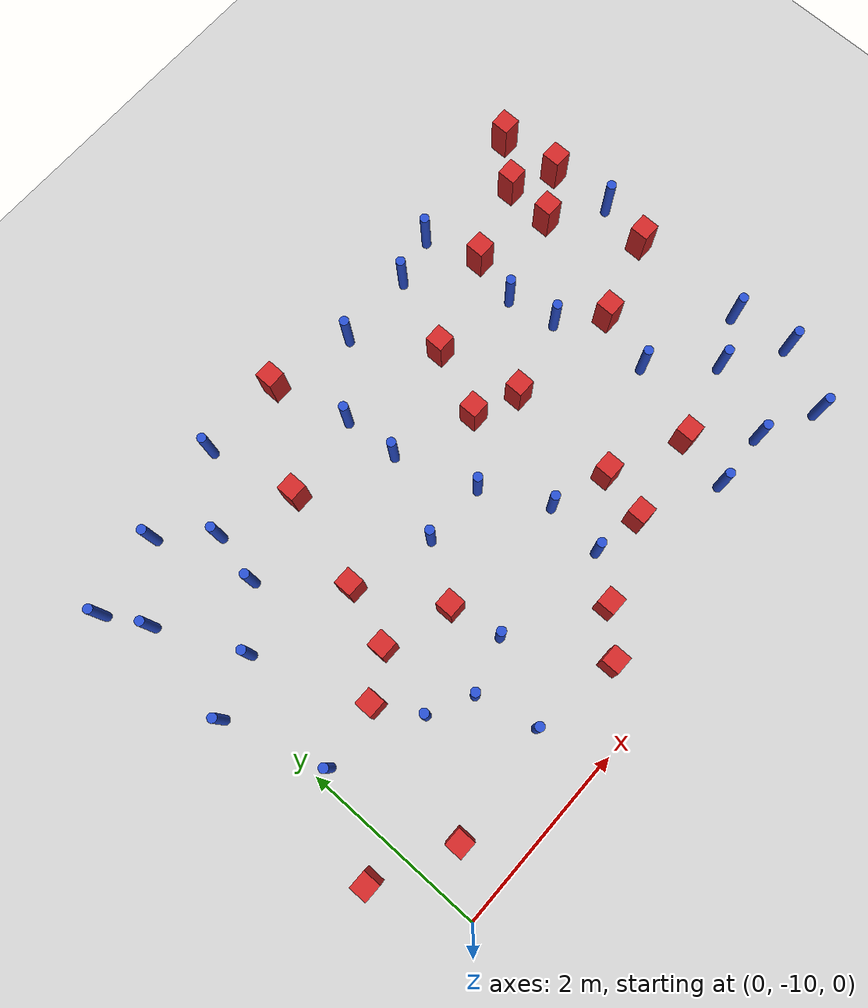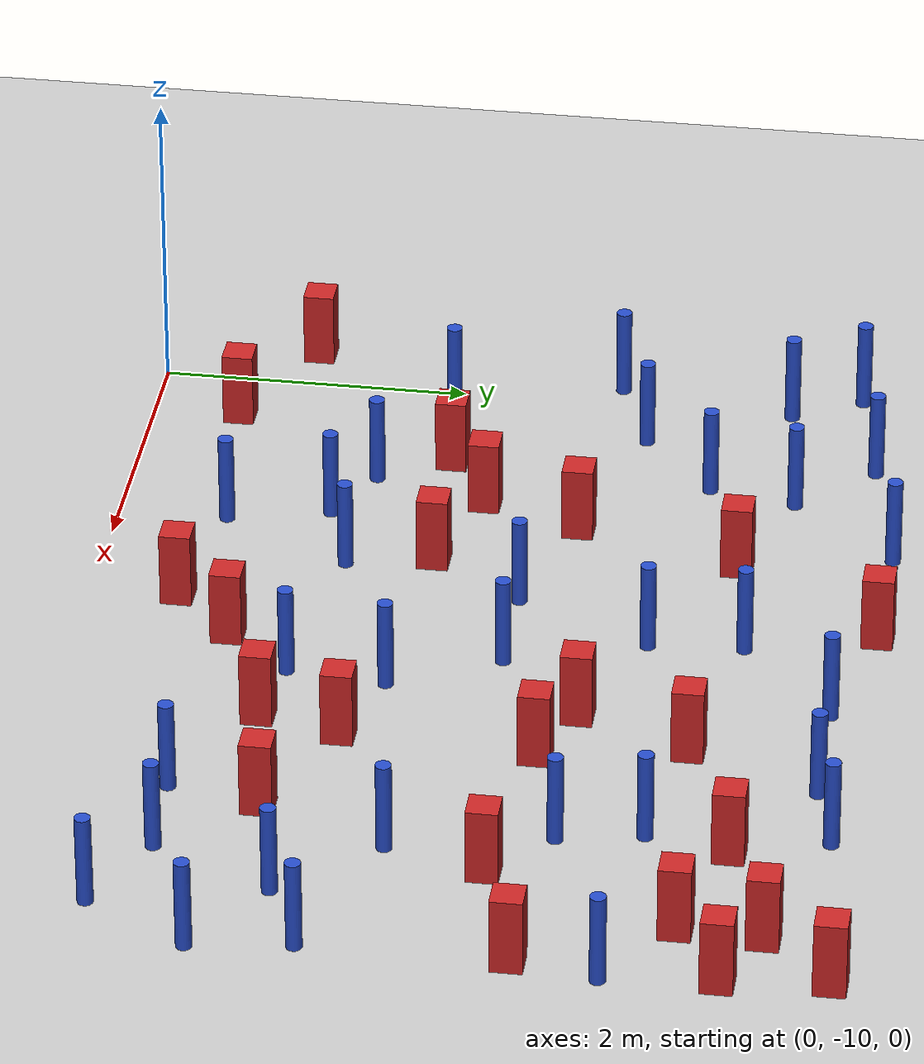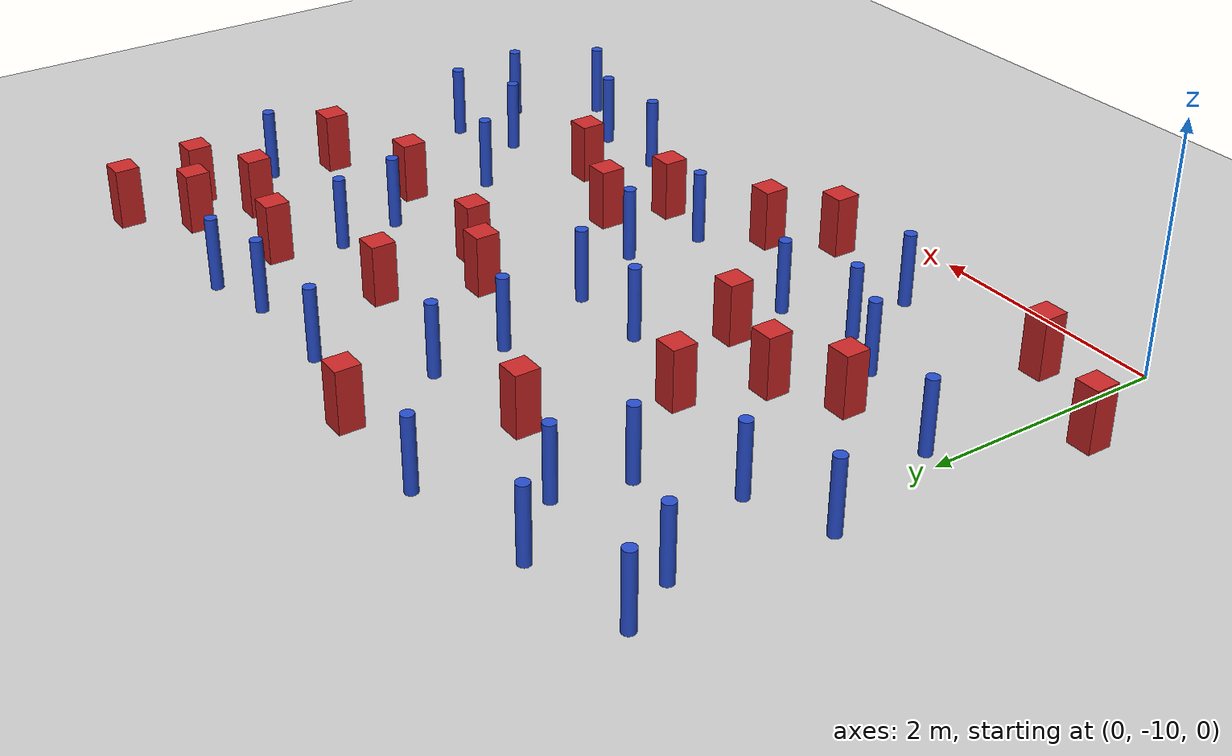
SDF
<sdf version="1.6">
 <world name="default">
  <model name="ground_plane">
   <static>1</static>
   <link name="link">
    <collision name="collision">
     <geometry><plane><normal>0 0 1</normal><size>100 100</size></plane></geometry>
     <surface><friction><ode><mu>100</mu><mu2>50</mu2></ode></friction></surface>
    </collision>
    <visual name="visual">
     <cast_shadows>0</cast_shadows>
     <geometry><plane><normal>0 0 1</normal><size>100 100</size></plane></geometry>
     <material>
      <ambient>1.0 1.0 1.0 1.0</ambient>
      <diffuse>0.8 0.8 0.8 1.0</diffuse>
      <specular>0.01 0.01 0.01 1.000000</specular>
     </material>
    </visual>
   </link>
  </model>
  <model name="square_post_obstacle3">
   <static>true</static>
   <pose>2.59659888073 -5.01492910549 1.91545236811e-07 -7.35059704564e-06 1.12565212e-07 2.39332434364e-05</pose>
   <link name="link">
    <pose>0 0 0.25 0 -0 0</pose>
    <inertial>
     <mass>100</mass>
     <inertia>
      <ixx>0.166667</ixx>
      <ixy>0</ixy>
      <ixz>0</ixz>
      <iyy>0.166667</iyy>
      <iyz>0</iyz>
      <izz>0.166667</izz>
     </inertia>
    </inertial>
    <collision name="collision"><geometry><box><size>.2 .2 .5</size></box></geometry></collision>
    <visual name="visual">
     <geometry><box><size>.2 .2 .5</size></box></geometry>
     <material>
      <script><name>Gazebo/Red</name><uri>file://media/materials/scripts/gazebo.material</uri></script>
     </material>
    </visual>
   </link>
  </model>
  <model name="pole_obstacle2">
   <static>true</static>
   <pose>2.45349405311 -7.29961357924 7.38925637345e-09 -8.47170692798e-08 1.24976765033e-08 -1.74513093019e-07</pose>
   <link name="link">
    <pose>0 0 0.3 0 -0 0</pose>
    <inertial>
     <mass>1</mass>
     <inertia><ixx>0.145833</ixx><ixy>0</ixy><ixz>0</ixz><iyy>0.145833</iyy><iyz>0</iyz><izz>0.125</izz></inertia>
    </inertial>
    <collision name="collision">
     <geometry><cylinder><radius>0.05</radius><length>.6</length></cylinder></geometry>
    </collision>
    <visual name="visual">
     <geometry><cylinder><radius>0.05</radius><length>.6</length></cylinder></geometry>
     <material>
      <script><name>Gazebo/Blue</name><uri>file://media/materials/scripts/gazebo.material</uri></script>
     </material>
    </visual>
   </link>
  </model>
  <model name="square_post_obstacle4">
   <static>true</static>
   <pose>4.12188741127 -8.18396951144 1.91545236811e-07 -7.35059704564e-06 1.12565212e-07 2.39332434364e-05</pose>
   <link name="link">
    <pose>0 0 0.25 0 -0 0</pose>
    <inertial>
     <mass>100</mass>
     <inertia>
      <ixx>0.166667</ixx>
      <ixy>0</ixy>
      <ixz>0</ixz>
      <iyy>0.166667</iyy>
      <iyz>0</iyz>
      <izz>0.166667</izz>
     </inertia>
    </inertial>
    <collision name="collision"><geometry><box><size>.2 .2 .5</size></box></geometry></collision>
    <visual name="visual">
     <geometry><box><size>.2 .2 .5</size></box></geometry>
     <material>
      <script><name>Gazebo/Red</name><uri>file://media/materials/scripts/gazebo.material</uri></script>
     </material>
    </visual>
   </link>
  </model>
  <model name="square_post_obstacle21">
   <static>true</static>
   <pose>5.45114207731 -7.09596721696 1.91545236811e-07 -7.35059704564e-06 1.12565212e-07 2.39332434364e-05</pose>
   <link name="link">
    <pose>0 0 0.25 0 -0 0</pose>
    <inertial>
     <mass>100</mass>
     <inertia>
      <ixx>0.166667</ixx>
      <ixy>0</ixy>
      <ixz>0</ixz>
      <iyy>0.166667</iyy>
      <iyz>0</iyz>
      <izz>0.166667</izz>
     </inertia>
    </inertial>
    <collision name="collision"><geometry><box><size>.2 .2 .5</size></box></geometry></collision>
    <visual name="visual">
     <geometry><box><size>.2 .2 .5</size></box></geometry>
     <material>
      <script><name>Gazebo/Red</name><uri>file://media/materials/scripts/gazebo.material</uri></script>
     </material>
    </visual>
   </link>
  </model>
  <model name="pole_obstacle16">
   <static>true</static>
   <pose>0.971475414994 -6.25803614195 7.38925637345e-09 -8.471706928e-08 1.24976765144e-08 -1.74513093012e-07</pose>
   <link name="link">
    <pose>0 0 0.3 0 -0 0</pose>
    <inertial>
     <mass>1</mass>
     <inertia><ixx>0.145833</ixx><ixy>0</ixy><ixz>0</ixz><iyy>0.145833</iyy><iyz>0</iyz><izz>0.125</izz></inertia>
    </inertial>
    <collision name="collision">
     <geometry><cylinder><radius>0.05</radius><length>.6</length></cylinder></geometry>
    </collision>
    <visual name="visual">
     <geometry><cylinder><radius>0.05</radius><length>.6</length></cylinder></geometry>
     <material>
      <script><name>Gazebo/Blue</name><uri>file://media/materials/scripts/gazebo.material</uri></script>
     </material>
    </visual>
   </link>
  </model>
  <model name="square_post_obstacle32">
   <static>true</static>
   <pose>6.37505744031 -5.58944678087 1.91545236811e-07 -7.35059704564e-06 1.12565212e-07 2.39332434364e-05</pose>
   <link name="link">
    <pose>0 0 0.25 0 -0 0</pose>
    <inertial>
     <mass>100</mass>
     <inertia>
      <ixx>0.166667</ixx>
      <ixy>0</ixy>
      <ixz>0</ixz>
      <iyy>0.166667</iyy>
      <iyz>0</iyz>
      <izz>0.166667</izz>
     </inertia>
    </inertial>
    <collision name="collision"><geometry><box><size>.2 .2 .5</size></box></geometry></collision>
    <visual name="visual">
     <geometry><box><size>.2 .2 .5</size></box></geometry>
     <material>
      <script><name>Gazebo/Red</name><uri>file://media/materials/scripts/gazebo.material</uri></script>
     </material>
    </visual>
   </link>
  </model>
  <model name="pole_obstacle28">
   <static>true</static>
   <pose>3.45068436615 -8.6225529517 7.38925637345e-09 -8.47170692793e-08 1.24976764408e-08 -1.74513093041e-07</pose>
   <link name="link">
    <pose>0 0 0.3 0 -0 0</pose>
    <inertial>
     <mass>1</mass>
     <inertia><ixx>0.145833</ixx><ixy>0</ixy><ixz>0</ixz><iyy>0.145833</iyy><iyz>0</iyz><izz>0.125</izz></inertia>
    </inertial>
    <collision name="collision">
     <geometry><cylinder><radius>0.05</radius><length>.6</length></cylinder></geometry>
    </collision>
    <visual name="visual">
     <geometry><cylinder><radius>0.05</radius><length>.6</length></cylinder></geometry>
     <material>
      <script><name>Gazebo/Blue</name><uri>file://media/materials/scripts/gazebo.material</uri></script>
     </material>
    </visual>
   </link>
  </model>
  <model name="pole_obstacle34">
   <static>true</static>
   <pose>4.80643166065 -9.12419512341 7.38925637345e-09 -8.471706928e-08 1.24976765081e-08 -1.74513093015e-07</pose>
   <link name="link">
    <pose>0 0 0.3 0 -0 0</pose>
    <inertial>
     <mass>1</mass>
     <inertia><ixx>0.145833</ixx><ixy>0</ixy><ixz>0</ixz><iyy>0.145833</iyy><iyz>0</iyz><izz>0.125</izz></inertia>
    </inertial>
    <collision name="collision">
     <geometry><cylinder><radius>0.05</radius><length>.6</length></cylinder></geometry>
    </collision>
    <visual name="visual">
     <geometry><cylinder><radius>0.05</radius><length>.6</length></cylinder></geometry>
     <material>
      <script><name>Gazebo/Blue</name><uri>file://media/materials/scripts/gazebo.material</uri></script>
     </material>
    </visual>
   </link>
  </model>
  <model name="pole_obstacle36">
   <static>true</static>
   <pose>0.628763210936 -5.21576733691 7.38925637345e-09 -8.471706928e-08 1.24976765086e-08 -1.74513093015e-07</pose>
   <link name="link">
    <pose>0 0 0.3 0 -0 0</pose>
    <inertial>
     <mass>1</mass>
     <inertia><ixx>0.145833</ixx><ixy>0</ixy><ixz>0</ixz><iyy>0.145833</iyy><iyz>0</iyz><izz>0.125</izz></inertia>
    </inertial>
    <collision name="collision">
     <geometry><cylinder><radius>0.05</radius><length>.6</length></cylinder></geometry>
    </collision>
    <visual name="visual">
     <geometry><cylinder><radius>0.05</radius><length>.6</length></cylinder></geometry>
     <material>
      <script><name>Gazebo/Blue</name><uri>file://media/materials/scripts/gazebo.material</uri></script>
     </material>
    </visual>
   </link>
  </model>
  <model name="pole_obstacle38">
   <static>true</static>
   <pose>1.66385078013 -5.00769734108 7.38925637345e-09 -8.47170692799e-08 1.24976765033e-08 -1.74513093018e-07</pose>
   <link name="link">
    <pose>0 0 0.3 0 -0 0</pose>
    <inertial>
     <mass>1</mass>
     <inertia><ixx>0.145833</ixx><ixy>0</ixy><ixz>0</ixz><iyy>0.145833</iyy><iyz>0</iyz><izz>0.125</izz></inertia>
    </inertial>
    <collision name="collision">
     <geometry><cylinder><radius>0.05</radius><length>.6</length></cylinder></geometry>
    </collision>
    <visual name="visual">
     <geometry><cylinder><radius>0.05</radius><length>.6</length></cylinder></geometry>
     <material>
      <script><name>Gazebo/Blue</name><uri>file://media/materials/scripts/gazebo.material</uri></script>
     </material>
    </visual>
   </link>
  </model>
  <model name="square_post_obstacle39">
   <static>true</static>
   <pose>6.30774814501 -4.93568094652 1.91545236811e-07 -7.35059704564e-06 1.12565212e-07 2.39332434364e-05</pose>
   <link name="link">
    <pose>0 0 0.25 0 -0 0</pose>
    <inertial>
     <mass>100</mass>
     <inertia>
      <ixx>0.166667</ixx>
      <ixy>0</ixy>
      <ixz>0</ixz>
      <iyy>0.166667</iyy>
      <iyz>0</iyz>
      <izz>0.166667</izz>
     </inertia>
    </inertial>
    <collision name="collision"><geometry><box><size>.2 .2 .5</size></box></geometry></collision>
    <visual name="visual">
     <geometry><box><size>.2 .2 .5</size></box></geometry>
     <material>
      <script><name>Gazebo/Red</name><uri>file://media/materials/scripts/gazebo.material</uri></script>
     </material>
    </visual>
   </link>
  </model>
  <model name="pole_obstacle42">
   <static>true</static>
   <pose>0.433236799367 -6.73699094718 7.38925637345e-09 -8.471706928e-08 1.24976765079e-08 -1.74513093015e-07</pose>
   <link name="link">
    <pose>0 0 0.3 0 -0 0</pose>
    <inertial>
     <mass>1</mass>
     <inertia><ixx>0.145833</ixx><ixy>0</ixy><ixz>0</ixz><iyy>0.145833</iyy><iyz>0</iyz><izz>0.125</izz></inertia>
    </inertial>
    <collision name="collision">
     <geometry><cylinder><radius>0.05</radius><length>.6</length></cylinder></geometry>
    </collision>
    <visual name="visual">
     <geometry><cylinder><radius>0.05</radius><length>.6</length></cylinder></geometry>
     <material>
      <script><name>Gazebo/Blue</name><uri>file://media/materials/scripts/gazebo.material</uri></script>
     </material>
    </visual>
   </link>
  </model>
  <model name="pole_obstacle43">
   <static>true</static>
   <pose>3.5116302715 -7.98918158774 7.38925637345e-09 -8.47170692799e-08 1.24976764977e-08 -1.74513093022e-07</pose>
   <link name="link">
    <pose>0 0 0.3 0 -0 0</pose>
    <inertial>
     <mass>1</mass>
     <inertia><ixx>0.145833</ixx><ixy>0</ixy><ixz>0</ixz><iyy>0.145833</iyy><iyz>0</iyz><izz>0.125</izz></inertia>
    </inertial>
    <collision name="collision">
     <geometry><cylinder><radius>0.05</radius><length>.6</length></cylinder></geometry>
    </collision>
    <visual name="visual">
     <geometry><cylinder><radius>0.05</radius><length>.6</length></cylinder></geometry>
     <material>
      <script><name>Gazebo/Blue</name><uri>file://media/materials/scripts/gazebo.material</uri></script>
     </material>
    </visual>
   </link>
  </model>
  <model name="square_post_obstacle46">
   <static>true</static>
   <pose>5.8821739779 -5.89413004932 1.91545236811e-07 -7.35059704564e-06 1.12565212e-07 2.39332434364e-05</pose>
   <link name="link">
    <pose>0 0 0.25 0 -0 0</pose>
    <inertial>
     <mass>100</mass>
     <inertia>
      <ixx>0.166667</ixx>
      <ixy>0</ixy>
      <ixz>0</ixz>
      <iyy>0.166667</iyy>
      <iyz>0</iyz>
      <izz>0.166667</izz>
     </inertia>
    </inertial>
    <collision name="collision"><geometry><box><size>.2 .2 .5</size></box></geometry></collision>
    <visual name="visual">
     <geometry><box><size>.2 .2 .5</size></box></geometry>
     <material>
      <script><name>Gazebo/Red</name><uri>file://media/materials/scripts/gazebo.material</uri></script>
     </material>
    </visual>
   </link>
  </model>
  <model name="pole_obstacle50">
   <static>true</static>
   <pose>3.48607327735 -5.22272215253 7.38925637345e-09 -8.47170692798e-08 1.24976765033e-08 -1.74513093019e-07</pose>
   <link name="link">
    <pose>0 0 0.3 0 -0 0</pose>
    <inertial>
     <mass>1</mass>
     <inertia><ixx>0.145833</ixx><ixy>0</ixy><ixz>0</ixz><iyy>0.145833</iyy><iyz>0</iyz><izz>0.125</izz></inertia>
    </inertial>
    <collision name="collision">
     <geometry><cylinder><radius>0.05</radius><length>.6</length></cylinder></geometry>
    </collision>
    <visual name="visual">
     <geometry><cylinder><radius>0.05</radius><length>.6</length></cylinder></geometry>
     <material>
      <script><name>Gazebo/Blue</name><uri>file://media/materials/scripts/gazebo.material</uri></script>
     </material>
    </visual>
   </link>
  </model>
  <model name="square_post_obstacle49">
   <static>true</static>
   <pose>5.91009182732 -5.37104472266 1.91545236811e-07 -7.35059704564e-06 1.12565212e-07 2.39332434364e-05</pose>
   <link name="link">
    <pose>0 0 0.25 0 -0 0</pose>
    <inertial>
     <mass>100</mass>
     <inertia>
      <ixx>0.166667</ixx>
      <ixy>0</ixy>
      <ixz>0</ixz>
      <iyy>0.166667</iyy>
      <iyz>0</iyz>
      <izz>0.166667</izz>
     </inertia>
    </inertial>
    <collision name="collision"><geometry><box><size>.2 .2 .5</size></box></geometry></collision>
    <visual name="visual">
     <geometry><box><size>.2 .2 .5</size></box></geometry>
     <material>
      <script><name>Gazebo/Red</name><uri>file://media/materials/scripts/gazebo.material</uri></script>
     </material>
    </visual>
   </link>
  </model>
  <model name="square_post_obstacle57">
   <static>true</static>
   <pose>0.478623955685 -9.42883674671 1.91545236811e-07 -7.35059704564e-06 1.12565212e-07 2.39332434364e-05</pose>
   <link name="link">
    <pose>0 0 0.25 0 -0 0</pose>
    <inertial>
     <mass>100</mass>
     <inertia>
      <ixx>0.166667</ixx>
      <ixy>0</ixy>
      <ixz>0</ixz>
      <iyy>0.166667</iyy>
      <iyz>0</iyz>
      <izz>0.166667</izz>
     </inertia>
    </inertial>
    <collision name="collision"><geometry><box><size>.2 .2 .5</size></box></geometry></collision>
    <visual name="visual">
     <geometry><box><size>.2 .2 .5</size></box></geometry>
     <material>
      <script><name>Gazebo/Red</name><uri>file://media/materials/scripts/gazebo.material</uri></script>
     </material>
    </visual>
   </link>
  </model>
  <model name="pole_obstacle55">
   <static>true</static>
   <pose>4.93630820136 -6.19221088149 7.38925637345e-09 -8.47170692796e-08 1.24976764786e-08 -1.74513093032e-07</pose>
   <link name="link">
    <pose>0 0 0.3 0 -0 0</pose>
    <inertial>
     <mass>1</mass>
     <inertia><ixx>0.145833</ixx><ixy>0</ixy><ixz>0</ixz><iyy>0.145833</iyy><iyz>0</iyz><izz>0.125</izz></inertia>
    </inertial>
    <collision name="collision">
     <geometry><cylinder><radius>0.05</radius><length>.6</length></cylinder></geometry>
    </collision>
    <visual name="visual">
     <geometry><cylinder><radius>0.05</radius><length>.6</length></cylinder></geometry>
     <material>
      <script><name>Gazebo/Blue</name><uri>file://media/materials/scripts/gazebo.material</uri></script>
     </material>
    </visual>
   </link>
  </model>
  <model name="pole_obstacle64">
   <static>true</static>
   <pose>2.17384985886 -8.45585699153 7.38925637345e-09 -8.47170692793e-08 1.24976764408e-08 -1.74513093041e-07</pose>
   <link name="link">
    <pose>0 0 0.3 0 -0 0</pose>
    <inertial>
     <mass>1</mass>
     <inertia><ixx>0.145833</ixx><ixy>0</ixy><ixz>0</ixz><iyy>0.145833</iyy><iyz>0</iyz><izz>0.125</izz></inertia>
    </inertial>
    <collision name="collision">
     <geometry><cylinder><radius>0.05</radius><length>.6</length></cylinder></geometry>
    </collision>
    <visual name="visual">
     <geometry><cylinder><radius>0.05</radius><length>.6</length></cylinder></geometry>
     <material>
      <script><name>Gazebo/Blue</name><uri>file://media/materials/scripts/gazebo.material</uri></script>
     </material>
    </visual>
   </link>
  </model>
  <model name="square_post_obstacle69">
   <static>true</static>
   <pose>4.01366160391 -6.03933688908 1.91545236811e-07 -7.35059704564e-06 1.12565212e-07 2.39332434364e-05</pose>
   <link name="link">
    <pose>0 0 0.25 0 -0 0</pose>
    <inertial>
     <mass>100</mass>
     <inertia>
      <ixx>0.166667</ixx>
      <ixy>0</ixy>
      <ixz>0</ixz>
      <iyy>0.166667</iyy>
      <iyz>0</iyz>
      <izz>0.166667</izz>
     </inertia>
    </inertial>
    <collision name="collision"><geometry><box><size>.2 .2 .5</size></box></geometry></collision>
    <visual name="visual">
     <geometry><box><size>.2 .2 .5</size></box></geometry>
     <material>
      <script><name>Gazebo/Red</name><uri>file://media/materials/scripts/gazebo.material</uri></script>
     </material>
    </visual>
   </link>
  </model>
  <model name="pole_obstacle67">
   <static>true</static>
   <pose>5.03976984883 -6.72295776701 7.38925637345e-09 -8.47170692796e-08 1.24976764786e-08 -1.74513093032e-07</pose>
   <link name="link">
    <pose>0 0 0.3 0 -0 0</pose>
    <inertial>
     <mass>1</mass>
     <inertia><ixx>0.145833</ixx><ixy>0</ixy><ixz>0</ixz><iyy>0.145833</iyy><iyz>0</iyz><izz>0.125</izz></inertia>
    </inertial>
    <collision name="collision">
     <geometry><cylinder><radius>0.05</radius><length>.6</length></cylinder></geometry>
    </collision>
    <visual name="visual">
     <geometry><cylinder><radius>0.05</radius><length>.6</length></cylinder></geometry>
     <material>
      <script><name>Gazebo/Blue</name><uri>file://media/materials/scripts/gazebo.material</uri></script>
     </material>
    </visual>
   </link>
  </model>
  <model name="pole_obstacle70">
   <static>true</static>
   <pose>-0.00445061579833 -5.82812584339 7.38925637345e-09 -8.47170692799e-08 1.24976765051e-08 -1.74513093018e-07</pose>
   <link name="link">
    <pose>0 0 0.3 0 -0 0</pose>
    <inertial>
     <mass>1</mass>
     <inertia><ixx>0.145833</ixx><ixy>0</ixy><ixz>0</ixz><iyy>0.145833</iyy><iyz>0</iyz><izz>0.125</izz></inertia>
    </inertial>
    <collision name="collision">
     <geometry><cylinder><radius>0.05</radius><length>.6</length></cylinder></geometry>
    </collision>
    <visual name="visual">
     <geometry><cylinder><radius>0.05</radius><length>.6</length></cylinder></geometry>
     <material>
      <script><name>Gazebo/Blue</name><uri>file://media/materials/scripts/gazebo.material</uri></script>
     </material>
    </visual>
   </link>
  </model>
  <model name="pole_obstacle71">
   <static>true</static>
   <pose>5.44114454831 -9.09803644031 7.38925637345e-09 -8.471706928e-08 1.24976765081e-08 -1.74513093015e-07</pose>
   <link name="link">
    <pose>0 0 0.3 0 -0 0</pose>
    <inertial>
     <mass>1</mass>
     <inertia><ixx>0.145833</ixx><ixy>0</ixy><ixz>0</ixz><iyy>0.145833</iyy><iyz>0</iyz><izz>0.125</izz></inertia>
    </inertial>
    <collision name="collision">
     <geometry><cylinder><radius>0.05</radius><length>.6</length></cylinder></geometry>
    </collision>
    <visual name="visual">
     <geometry><cylinder><radius>0.05</radius><length>.6</length></cylinder></geometry>
     <material>
      <script><name>Gazebo/Blue</name><uri>file://media/materials/scripts/gazebo.material</uri></script>
     </material>
    </visual>
   </link>
  </model>
  <model name="pole_obstacle74">
   <static>true</static>
   <pose>3.15479390703 -7.30347791514 7.38925637345e-09 -8.47170692798e-08 1.24976765033e-08 -1.74513093019e-07</pose>
   <link name="link">
    <pose>0 0 0.3 0 -0 0</pose>
    <inertial>
     <mass>1</mass>
     <inertia><ixx>0.145833</ixx><ixy>0</ixy><ixz>0</ixz><iyy>0.145833</iyy><iyz>0</iyz><izz>0.125</izz></inertia>
    </inertial>
    <collision name="collision">
     <geometry><cylinder><radius>0.05</radius><length>.6</length></cylinder></geometry>
    </collision>
    <visual name="visual">
     <geometry><cylinder><radius>0.05</radius><length>.6</length></cylinder></geometry>
     <material>
      <script><name>Gazebo/Blue</name><uri>file://media/materials/scripts/gazebo.material</uri></script>
     </material>
    </visual>
   </link>
  </model>
  <model name="pole_obstacle83">
   <static>true</static>
   <pose>1.08478486417 -5.69526822209 7.38925637345e-09 -8.47170692799e-08 1.24976765033e-08 -1.74513093018e-07</pose>
   <link name="link">
    <pose>0 0 0.3 0 -0 0</pose>
    <inertial>
     <mass>1</mass>
     <inertia><ixx>0.145833</ixx><ixy>0</ixy><ixz>0</ixz><iyy>0.145833</iyy><iyz>0</iyz><izz>0.125</izz></inertia>
    </inertial>
    <collision name="collision">
     <geometry><cylinder><radius>0.05</radius><length>.6</length></cylinder></geometry>
    </collision>
    <visual name="visual">
     <geometry><cylinder><radius>0.05</radius><length>.6</length></cylinder></geometry>
     <material>
      <script><name>Gazebo/Blue</name><uri>file://media/materials/scripts/gazebo.material</uri></script>
     </material>
    </visual>
   </link>
  </model>
  <model name="pole_obstacle100">
   <static>true</static>
   <pose>1.12871592524 -8.41384164393 7.38925637345e-09 -8.47170692798e-08 1.24976764881e-08 -1.74513093027e-07</pose>
   <link name="link">
    <pose>0 0 0.3 0 -0 0</pose>
    <inertial>
     <mass>1</mass>
     <inertia><ixx>0.145833</ixx><ixy>0</ixy><ixz>0</ixz><iyy>0.145833</iyy><iyz>0</iyz><izz>0.125</izz></inertia>
    </inertial>
    <collision name="collision">
     <geometry><cylinder><radius>0.05</radius><length>.6</length></cylinder></geometry>
    </collision>
    <visual name="visual">
     <geometry><cylinder><radius>0.05</radius><length>.6</length></cylinder></geometry>
     <material>
      <script><name>Gazebo/Blue</name><uri>file://media/materials/scripts/gazebo.material</uri></script>
     </material>
    </visual>
   </link>
  </model>
  <model name="square_post_obstacle98">
   <static>true</static>
   <pose>2.06844822664 -7.90231194477 1.91545236811e-07 -7.35059704564e-06 1.12565212e-07 2.39332434364e-05</pose>
   <link name="link">
    <pose>0 0 0.25 0 -0 0</pose>
    <inertial>
     <mass>100</mass>
     <inertia>
      <ixx>0.166667</ixx>
      <ixy>0</ixy>
      <ixz>0</ixz>
      <iyy>0.166667</iyy>
      <iyz>0</iyz>
      <izz>0.166667</izz>
     </inertia>
    </inertial>
    <collision name="collision"><geometry><box><size>.2 .2 .5</size></box></geometry></collision>
    <visual name="visual">
     <geometry><box><size>.2 .2 .5</size></box></geometry>
     <material>
      <script><name>Gazebo/Red</name><uri>file://media/materials/scripts/gazebo.material</uri></script>
     </material>
    </visual>
   </link>
  </model>
  <model name="square_post_obstacle106">
   <static>true</static>
   <pose>4.94266510247 -8.54367366897 1.91545236811e-07 -7.35059704564e-06 1.12565212e-07 2.39332434364e-05</pose>
   <link name="link">
    <pose>0 0 0.25 0 -0 0</pose>
    <inertial>
     <mass>100</mass>
     <inertia>
      <ixx>0.166667</ixx>
      <ixy>0</ixy>
      <ixz>0</ixz>
      <iyy>0.166667</iyy>
      <iyz>0</iyz>
      <izz>0.166667</izz>
     </inertia>
    </inertial>
    <collision name="collision"><geometry><box><size>.2 .2 .5</size></box></geometry></collision>
    <visual name="visual">
     <geometry><box><size>.2 .2 .5</size></box></geometry>
     <material>
      <script><name>Gazebo/Red</name><uri>file://media/materials/scripts/gazebo.material</uri></script>
     </material>
    </visual>
   </link>
  </model>
  <model name="square_post_obstacle111">
   <static>true</static>
   <pose>5.06188230259 -5.66979335068 1.91545236811e-07 -7.35059704564e-06 1.12565212e-07 2.39332434364e-05</pose>
   <link name="link">
    <pose>0 0 0.25 0 -0 0</pose>
    <inertial>
     <mass>100</mass>
     <inertia>
      <ixx>0.166667</ixx>
      <ixy>0</ixy>
      <ixz>0</ixz>
      <iyy>0.166667</iyy>
      <iyz>0</iyz>
      <izz>0.166667</izz>
     </inertia>
    </inertial>
    <collision name="collision"><geometry><box><size>.2 .2 .5</size></box></geometry></collision>
    <visual name="visual">
     <geometry><box><size>.2 .2 .5</size></box></geometry>
     <material>
      <script><name>Gazebo/Red</name><uri>file://media/materials/scripts/gazebo.material</uri></script>
     </material>
    </visual>
   </link>
  </model>
  <model name="pole_obstacle122">
   <static>true</static>
   <pose>0.156492550253 -8.04960198324 7.38925637345e-09 -8.47170692795e-08 1.24976764611e-08 -1.74513093041e-07</pose>
   <link name="link">
    <pose>0 0 0.3 0 -0 0</pose>
    <inertial>
     <mass>1</mass>
     <inertia><ixx>0.145833</ixx><ixy>0</ixy><ixz>0</ixz><iyy>0.145833</iyy><iyz>0</iyz><izz>0.125</izz></inertia>
    </inertial>
    <collision name="collision">
     <geometry><cylinder><radius>0.05</radius><length>.6</length></cylinder></geometry>
    </collision>
    <visual name="visual">
     <geometry><cylinder><radius>0.05</radius><length>.6</length></cylinder></geometry>
     <material>
      <script><name>Gazebo/Blue</name><uri>file://media/materials/scripts/gazebo.material</uri></script>
     </material>
    </visual>
   </link>
  </model>
  <model name="square_post_obstacle125">
   <static>true</static>
   <pose>3.71209409322 -6.76229926876 1.91545236811e-07 -7.35059704564e-06 1.12565212e-07 2.39332434364e-05</pose>
   <link name="link">
    <pose>0 0 0.25 0 -0 0</pose>
    <inertial>
     <mass>100</mass>
     <inertia>
      <ixx>0.166667</ixx>
      <ixy>0</ixy>
      <ixz>0</ixz>
      <iyy>0.166667</iyy>
      <iyz>0</iyz>
      <izz>0.166667</izz>
     </inertia>
    </inertial>
    <collision name="collision"><geometry><box><size>.2 .2 .5</size></box></geometry></collision>
    <visual name="visual">
     <geometry><box><size>.2 .2 .5</size></box></geometry>
     <material>
      <script><name>Gazebo/Red</name><uri>file://media/materials/scripts/gazebo.material</uri></script>
     </material>
    </visual>
   </link>
  </model>
  <model name="pole_obstacle145">
   <static>true</static>
   <pose>4.86375977888 -5.07793176925 7.38925637345e-09 -8.47170692796e-08 1.24976764786e-08 -1.74513093032e-07</pose>
   <link name="link">
    <pose>0 0 0.3 0 -0 0</pose>
    <inertial>
     <mass>1</mass>
     <inertia><ixx>0.145833</ixx><ixy>0</ixy><ixz>0</ixz><iyy>0.145833</iyy><iyz>0</iyz><izz>0.125</izz></inertia>
    </inertial>
    <collision name="collision">
     <geometry><cylinder><radius>0.05</radius><length>.6</length></cylinder></geometry>
    </collision>
    <visual name="visual">
     <geometry><cylinder><radius>0.05</radius><length>.6</length></cylinder></geometry>
     <material>
      <script><name>Gazebo/Blue</name><uri>file://media/materials/scripts/gazebo.material</uri></script>
     </material>
    </visual>
   </link>
  </model>
  <model name="square_post_obstacle138">
   <static>true</static>
   <pose>1.89395054279 -5.97895364672 1.91545236811e-07 -7.35059704564e-06 1.12565212e-07 2.39332434364e-05</pose>
   <link name="link">
    <pose>0 0 0.25 0 -0 0</pose>
    <inertial>
     <mass>100</mass>
     <inertia>
      <ixx>0.166667</ixx>
      <ixy>0</ixy>
      <ixz>0</ixz>
      <iyy>0.166667</iyy>
      <iyz>0</iyz>
      <izz>0.166667</izz>
     </inertia>
    </inertial>
    <collision name="collision"><geometry><box><size>.2 .2 .5</size></box></geometry></collision>
    <visual name="visual">
     <geometry><box><size>.2 .2 .5</size></box></geometry>
     <material>
      <script><name>Gazebo/Red</name><uri>file://media/materials/scripts/gazebo.material</uri></script>
     </material>
    </visual>
   </link>
  </model>
  <model name="pole_obstacle152">
   <static>true</static>
   <pose>1.58652492409 -8.64419628384 7.38925637345e-09 -8.47170692798e-08 1.24976764881e-08 -1.74513093027e-07</pose>
   <link name="link">
    <pose>0 0 0.3 0 -0 0</pose>
    <inertial>
     <mass>1</mass>
     <inertia><ixx>0.145833</ixx><ixy>0</ixy><ixz>0</ixz><iyy>0.145833</iyy><iyz>0</iyz><izz>0.125</izz></inertia>
    </inertial>
    <collision name="collision">
     <geometry><cylinder><radius>0.05</radius><length>.6</length></cylinder></geometry>
    </collision>
    <visual name="visual">
     <geometry><cylinder><radius>0.05</radius><length>.6</length></cylinder></geometry>
     <material>
      <script><name>Gazebo/Blue</name><uri>file://media/materials/scripts/gazebo.material</uri></script>
     </material>
    </visual>
   </link>
  </model>
  <model name="square_post_obstacle143">
   <static>true</static>
   <pose>1.57738080446 -7.03701767622 1.91545236811e-07 -7.35059704564e-06 1.12565212e-07 2.39332434364e-05</pose>
   <link name="link">
    <pose>0 0 0.25 0 -0 0</pose>
    <inertial>
     <mass>100</mass>
     <inertia>
      <ixx>0.166667</ixx>
      <ixy>0</ixy>
      <ixz>0</ixz>
      <iyy>0.166667</iyy>
      <iyz>0</iyz>
      <izz>0.166667</izz>
     </inertia>
    </inertial>
    <collision name="collision"><geometry><box><size>.2 .2 .5</size></box></geometry></collision>
    <visual name="visual">
     <geometry><box><size>.2 .2 .5</size></box></geometry>
     <material>
      <script><name>Gazebo/Red</name><uri>file://media/materials/scripts/gazebo.material</uri></script>
     </material>
    </visual>
   </link>
  </model>
  <model name="square_post_obstacle146">
   <static>true</static>
   <pose>6.33272859071 -6.82684460262 1.91545236811e-07 -7.35059704564e-06 1.12565212e-07 2.39332434364e-05</pose>
   <link name="link">
    <pose>0 0 0.25 0 -0 0</pose>
    <inertial>
     <mass>100</mass>
     <inertia>
      <ixx>0.166667</ixx>
      <ixy>0</ixy>
      <ixz>0</ixz>
      <iyy>0.166667</iyy>
      <iyz>0</iyz>
      <izz>0.166667</izz>
     </inertia>
    </inertial>
    <collision name="collision"><geometry><box><size>.2 .2 .5</size></box></geometry></collision>
    <visual name="visual">
     <geometry><box><size>.2 .2 .5</size></box></geometry>
     <material>
      <script><name>Gazebo/Red</name><uri>file://media/materials/scripts/gazebo.material</uri></script>
     </material>
    </visual>
   </link>
  </model>
  <model name="pole_obstacle158">
   <static>true</static>
   <pose>6.34073336708 -8.09207436409 7.38925637345e-09 -8.471706928e-08 1.24976765081e-08 -1.74513093015e-07</pose>
   <link name="link">
    <pose>0 0 0.3 0 -0 0</pose>
    <inertial>
     <mass>1</mass>
     <inertia><ixx>0.145833</ixx><ixy>0</ixy><ixz>0</ixz><iyy>0.145833</iyy><iyz>0</iyz><izz>0.125</izz></inertia>
    </inertial>
    <collision name="collision">
     <geometry><cylinder><radius>0.05</radius><length>.6</length></cylinder></geometry>
    </collision>
    <visual name="visual">
     <geometry><cylinder><radius>0.05</radius><length>.6</length></cylinder></geometry>
     <material>
      <script><name>Gazebo/Blue</name><uri>file://media/materials/scripts/gazebo.material</uri></script>
     </material>
    </visual>
   </link>
  </model>
  <model name="pole_obstacle162">
   <static>true</static>
   <pose>2.85909696455 -6.43311857938 7.38925637345e-09 -8.47170692798e-08 1.24976765033e-08 -1.74513093019e-07</pose>
   <link name="link">
    <pose>0 0 0.3 0 -0 0</pose>
    <inertial>
     <mass>1</mass>
     <inertia><ixx>0.145833</ixx><ixy>0</ixy><ixz>0</ixz><iyy>0.145833</iyy><iyz>0</iyz><izz>0.125</izz></inertia>
    </inertial>
    <collision name="collision">
     <geometry><cylinder><radius>0.05</radius><length>.6</length></cylinder></geometry>
    </collision>
    <visual name="visual">
     <geometry><cylinder><radius>0.05</radius><length>.6</length></cylinder></geometry>
     <material>
      <script><name>Gazebo/Blue</name><uri>file://media/materials/scripts/gazebo.material</uri></script>
     </material>
    </visual>
   </link>
  </model>
  <model name="pole_obstacle164">
   <static>true</static>
   <pose>6.4283074261 -6.28660828885 7.38925637345e-09 -8.47170692796e-08 1.24976764786e-08 -1.74513093032e-07</pose>
   <link name="link">
    <pose>0 0 0.3 0 -0 0</pose>
    <inertial>
     <mass>1</mass>
     <inertia><ixx>0.145833</ixx><ixy>0</ixy><ixz>0</ixz><iyy>0.145833</iyy><iyz>0</iyz><izz>0.125</izz></inertia>
    </inertial>
    <collision name="collision">
     <geometry><cylinder><radius>0.05</radius><length>.6</length></cylinder></geometry>
    </collision>
    <visual name="visual">
     <geometry><cylinder><radius>0.05</radius><length>.6</length></cylinder></geometry>
     <material>
      <script><name>Gazebo/Blue</name><uri>file://media/materials/scripts/gazebo.material</uri></script>
     </material>
    </visual>
   </link>
  </model>
  <model name="pole_obstacle166">
   <static>true</static>
   <pose>4.34513387192 -5.2123118179 7.38925637345e-09 -8.47170692796e-08 1.24976764786e-08 -1.74513093032e-07</pose>
   <link name="link">
    <pose>0 0 0.3 0 -0 0</pose>
    <inertial>
     <mass>1</mass>
     <inertia><ixx>0.145833</ixx><ixy>0</ixy><ixz>0</ixz><iyy>0.145833</iyy><iyz>0</iyz><izz>0.125</izz></inertia>
    </inertial>
    <collision name="collision">
     <geometry><cylinder><radius>0.05</radius><length>.6</length></cylinder></geometry>
    </collision>
    <visual name="visual">
     <geometry><cylinder><radius>0.05</radius><length>.6</length></cylinder></geometry>
     <material>
      <script><name>Gazebo/Blue</name><uri>file://media/materials/scripts/gazebo.material</uri></script>
     </material>
    </visual>
   </link>
  </model>
  <model name="pole_obstacle171">
   <static>true</static>
   <pose>-0.245858605922 -5.3810238145 7.38925637345e-09 -8.47170692799e-08 1.2497676507e-08 -1.74513093018e-07</pose>
   <link name="link">
    <pose>0 0 0.3 0 -0 0</pose>
    <inertial>
     <mass>1</mass>
     <inertia><ixx>0.145833</ixx><ixy>0</ixy><ixz>0</ixz><iyy>0.145833</iyy><iyz>0</iyz><izz>0.125</izz></inertia>
    </inertial>
    <collision name="collision">
     <geometry><cylinder><radius>0.05</radius><length>.6</length></cylinder></geometry>
    </collision>
    <visual name="visual">
     <geometry><cylinder><radius>0.05</radius><length>.6</length></cylinder></geometry>
     <material>
      <script><name>Gazebo/Blue</name><uri>file://media/materials/scripts/gazebo.material</uri></script>
     </material>
    </visual>
   </link>
  </model>
  <model name="pole_obstacle173">
   <static>true</static>
   <pose>-0.193313827346 -6.97031678631 7.38925637345e-09 -8.47170692799e-08 1.24976765068e-08 -1.74513093018e-07</pose>
   <link name="link">
    <pose>0 0 0.3 0 -0 0</pose>
    <inertial>
     <mass>1</mass>
     <inertia><ixx>0.145833</ixx><ixy>0</ixy><ixz>0</ixz><iyy>0.145833</iyy><iyz>0</iyz><izz>0.125</izz></inertia>
    </inertial>
    <collision name="collision">
     <geometry><cylinder><radius>0.05</radius><length>.6</length></cylinder></geometry>
    </collision>
    <visual name="visual">
     <geometry><cylinder><radius>0.05</radius><length>.6</length></cylinder></geometry>
     <material>
      <script><name>Gazebo/Blue</name><uri>file://media/materials/scripts/gazebo.material</uri></script>
     </material>
    </visual>
   </link>
  </model>
  <model name="square_post_obstacle171">
   <static>true</static>
   <pose>3.10264334331 -9.05100024304 1.91545236811e-07 -7.35059704564e-06 1.12565212e-07 2.39332434364e-05</pose>
   <link name="link">
    <pose>0 0 0.25 0 -0 0</pose>
    <inertial>
     <mass>100</mass>
     <inertia>
      <ixx>0.166667</ixx>
      <ixy>0</ixy>
      <ixz>0</ixz>
      <iyy>0.166667</iyy>
      <iyz>0</iyz>
      <izz>0.166667</izz>
     </inertia>
    </inertial>
    <collision name="collision"><geometry><box><size>.2 .2 .5</size></box></geometry></collision>
    <visual name="visual">
     <geometry><box><size>.2 .2 .5</size></box></geometry>
     <material>
      <script><name>Gazebo/Red</name><uri>file://media/materials/scripts/gazebo.material</uri></script>
     </material>
    </visual>
   </link>
  </model>
  <model name="square_post_obstacle173">
   <static>true</static>
   <pose>3.98025668283 -8.70884603875 1.91545236811e-07 -7.35059704564e-06 1.12565212e-07 2.39332434364e-05</pose>
   <link name="link">
    <pose>0 0 0.25 0 -0 0</pose>
    <inertial>
     <mass>100</mass>
     <inertia>
      <ixx>0.166667</ixx>
      <ixy>0</ixy>
      <ixz>0</ixz>
      <iyy>0.166667</iyy>
      <iyz>0</iyz>
      <izz>0.166667</izz>
     </inertia>
    </inertial>
    <collision name="collision"><geometry><box><size>.2 .2 .5</size></box></geometry></collision>
    <visual name="visual">
     <geometry><box><size>.2 .2 .5</size></box></geometry>
     <material>
      <script><name>Gazebo/Red</name><uri>file://media/materials/scripts/gazebo.material</uri></script>
     </material>
    </visual>
   </link>
  </model>
  <model name="square_post_obstacle175">
   <static>true</static>
   <pose>2.70096293606 -9.44138730624 1.91545236811e-07 -7.35059704564e-06 1.12565212e-07 2.39332434364e-05</pose>
   <link name="link">
    <pose>0 0 0.25 0 -0 0</pose>
    <inertial>
     <mass>100</mass>
     <inertia>
      <ixx>0.166667</ixx>
      <ixy>0</ixy>
      <ixz>0</ixz>
      <iyy>0.166667</iyy>
      <iyz>0</iyz>
      <izz>0.166667</izz>
     </inertia>
    </inertial>
    <collision name="collision"><geometry><box><size>.2 .2 .5</size></box></geometry></collision>
    <visual name="visual">
     <geometry><box><size>.2 .2 .5</size></box></geometry>
     <material>
      <script><name>Gazebo/Red</name><uri>file://media/materials/scripts/gazebo.material</uri></script>
     </material>
    </visual>
   </link>
  </model>
  <model name="square_post_obstacle186">
   <static>true</static>
   <pose>-0.363476746996 -9.02784209965 1.91545236811e-07 -7.35059704564e-06 1.12565212e-07 2.39332434364e-05</pose>
   <link name="link">
    <pose>0 0 0.25 0 -0 0</pose>
    <inertial>
     <mass>100</mass>
     <inertia>
      <ixx>0.166667</ixx>
      <ixy>0</ixy>
      <ixz>0</ixz>
      <iyy>0.166667</iyy>
      <iyz>0</iyz>
      <izz>0.166667</izz>
     </inertia>
    </inertial>
    <collision name="collision"><geometry><box><size>.2 .2 .5</size></box></geometry></collision>
    <visual name="visual">
     <geometry><box><size>.2 .2 .5</size></box></geometry>
     <material>
      <script><name>Gazebo/Red</name><uri>file://media/materials/scripts/gazebo.material</uri></script>
     </material>
    </visual>
   </link>
  </model>
  <model name="square_post_obstacle189">
   <static>true</static>
   <pose>0.867242251761 -7.95855062389 1.91545236811e-07 -7.35059704564e-06 1.12565212e-07 2.39332434364e-05</pose>
   <link name="link">
    <pose>0 0 0.25 0 -0 0</pose>
    <inertial>
     <mass>100</mass>
     <inertia>
      <ixx>0.166667</ixx>
      <ixy>0</ixy>
      <ixz>0</ixz>
      <iyy>0.166667</iyy>
      <iyz>0</iyz>
      <izz>0.166667</izz>
     </inertia>
    </inertial>
    <collision name="collision"><geometry><box><size>.2 .2 .5</size></box></geometry></collision>
    <visual name="visual">
     <geometry><box><size>.2 .2 .5</size></box></geometry>
     <material>
      <script><name>Gazebo/Red</name><uri>file://media/materials/scripts/gazebo.material</uri></script>
     </material>
    </visual>
   </link>
  </model>
  <model name="square_post_obstacle192">
   <static>true</static>
   <pose>4.18524349151 -6.95888895418 1.91545236811e-07 -7.35059704564e-06 1.12565212e-07 2.39332434364e-05</pose>
   <link name="link">
    <pose>0 0 0.25 0 -0 0</pose>
    <inertial>
     <mass>100</mass>
     <inertia>
      <ixx>0.166667</ixx>
      <ixy>0</ixy>
      <ixz>0</ixz>
      <iyy>0.166667</iyy>
      <iyz>0</iyz>
      <izz>0.166667</izz>
     </inertia>
    </inertial>
    <collision name="collision"><geometry><box><size>.2 .2 .5</size></box></geometry></collision>
    <visual name="visual">
     <geometry><box><size>.2 .2 .5</size></box></geometry>
     <material>
      <script><name>Gazebo/Red</name><uri>file://media/materials/scripts/gazebo.material</uri></script>
     </material>
    </visual>
   </link>
  </model>
  <model name="square_post_obstacle195">
   <static>true</static>
   <pose>1.34594037799 -7.67515894246 1.91545236811e-07 -7.35059704564e-06 1.12565212e-07 2.39332434364e-05</pose>
   <link name="link">
    <pose>0 0 0.25 0 -0 0</pose>
    <inertial>
     <mass>100</mass>
     <inertia>
      <ixx>0.166667</ixx>
      <ixy>0</ixy>
      <ixz>0</ixz>
      <iyy>0.166667</iyy>
      <iyz>0</iyz>
      <izz>0.166667</izz>
     </inertia>
    </inertial>
    <collision name="collision"><geometry><box><size>.2 .2 .5</size></box></geometry></collision>
    <visual name="visual">
     <geometry><box><size>.2 .2 .5</size></box></geometry>
     <material>
      <script><name>Gazebo/Red</name><uri>file://media/materials/scripts/gazebo.material</uri></script>
     </material>
    </visual>
   </link>
  </model>
  <model name="pole_obstacle191">
   <static>true</static>
   <pose>5.80394317903 -8.32942111747 7.38925637345e-09 -8.471706928e-08 1.24976765081e-08 -1.74513093015e-07</pose>
   <link name="link">
    <pose>0 0 0.3 0 -0 0</pose>
    <inertial>
     <mass>1</mass>
     <inertia><ixx>0.145833</ixx><ixy>0</ixy><ixz>0</ixz><iyy>0.145833</iyy><iyz>0</iyz><izz>0.125</izz></inertia>
    </inertial>
    <collision name="collision">
     <geometry><cylinder><radius>0.05</radius><length>.6</length></cylinder></geometry>
    </collision>
    <visual name="visual">
     <geometry><cylinder><radius>0.05</radius><length>.6</length></cylinder></geometry>
     <material>
      <script><name>Gazebo/Blue</name><uri>file://media/materials/scripts/gazebo.material</uri></script>
     </material>
    </visual>
   </link>
  </model>
  <model name="pole_obstacle196">
   <static>true</static>
   <pose>5.26715605573 -7.72535632369 7.38925637345e-09 -8.47170692796e-08 1.24976764786e-08 -1.74513093032e-07</pose>
   <link name="link">
    <pose>0 0 0.3 0 -0 0</pose>
    <inertial>
     <mass>1</mass>
     <inertia><ixx>0.145833</ixx><ixy>0</ixy><ixz>0</ixz><iyy>0.145833</iyy><iyz>0</iyz><izz>0.125</izz></inertia>
    </inertial>
    <collision name="collision">
     <geometry><cylinder><radius>0.05</radius><length>.6</length></cylinder></geometry>
    </collision>
    <visual name="visual">
     <geometry><cylinder><radius>0.05</radius><length>.6</length></cylinder></geometry>
     <material>
      <script><name>Gazebo/Blue</name><uri>file://media/materials/scripts/gazebo.material</uri></script>
     </material>
    </visual>
   </link>
  </model>
  <model name="pole_obstacle198">
   <static>true</static>
   <pose>6.42421111619 -8.73404832325 7.38925637345e-09 -8.471706928e-08 1.24976765081e-08 -1.74513093015e-07</pose>
   <link name="link">
    <pose>0 0 0.3 0 -0 0</pose>
    <inertial>
     <mass>1</mass>
     <inertia><ixx>0.145833</ixx><ixy>0</ixy><ixz>0</ixz><iyy>0.145833</iyy><iyz>0</iyz><izz>0.125</izz></inertia>
    </inertial>
    <collision name="collision">
     <geometry><cylinder><radius>0.05</radius><length>.6</length></cylinder></geometry>
    </collision>
    <visual name="visual">
     <geometry><cylinder><radius>0.05</radius><length>.6</length></cylinder></geometry>
     <material>
      <script><name>Gazebo/Blue</name><uri>file://media/materials/scripts/gazebo.material</uri></script>
     </material>
    </visual>
   </link>
  </model>
  <model name="pole_obstacle215">
   <static>true</static>
   <pose>6.06048000957 -9.39188997922 7.38925637345e-09 -8.471706928e-08 1.24976765081e-08 -1.74513093015e-07</pose>
   <link name="link">
    <pose>0 0 0.3 0 -0 0</pose>
    <inertial>
     <mass>1</mass>
     <inertia><ixx>0.145833</ixx><ixy>0</ixy><ixz>0</ixz><iyy>0.145833</iyy><iyz>0</iyz><izz>0.125</izz></inertia>
    </inertial>
    <collision name="collision">
     <geometry><cylinder><radius>0.05</radius><length>.6</length></cylinder></geometry>
    </collision>
    <visual name="visual">
     <geometry><cylinder><radius>0.05</radius><length>.6</length></cylinder></geometry>
     <material>
      <script><name>Gazebo/Blue</name><uri>file://media/materials/scripts/gazebo.material</uri></script>
     </material>
    </visual>
   </link>
  </model>
  <model name="pole_obstacle221">
   <static>true</static>
   <pose>1.74298000957 -9.29657997922 7.38925637345e-09 -8.47170692798e-08 1.24976764879e-08 -1.74513093027e-07</pose>
   <link name="link">
    <pose>0 0 0.3 0 -0 0</pose>
    <inertial>
     <mass>1</mass>
     <inertia><ixx>0.145833</ixx><ixy>0</ixy><ixz>0</ixz><iyy>0.145833</iyy><iyz>0</iyz><izz>0.125</izz></inertia>
    </inertial>
    <collision name="collision">
     <geometry><cylinder><radius>0.05</radius><length>.6</length></cylinder></geometry>
    </collision>
    <visual name="visual">
     <geometry><cylinder><radius>0.05</radius><length>.6</length></cylinder></geometry>
     <material>
      <script><name>Gazebo/Blue</name><uri>file://media/materials/scripts/gazebo.material</uri></script>
     </material>
    </visual>
   </link>
  </model>
  <model name="pole_obstacle228">
   <static>true</static>
   <pose>2.81902000957 -5.82948997922 7.38925637345e-09 -8.47170692798e-08 1.24976765033e-08 -1.74513093019e-07</pose>
   <link name="link">
    <pose>0 0 0.3 0 -0 0</pose>
    <inertial>
     <mass>1</mass>
     <inertia><ixx>0.145833</ixx><ixy>0</ixy><ixz>0</ixz><iyy>0.145833</iyy><iyz>0</iyz><izz>0.125</izz></inertia>
    </inertial>
    <collision name="collision">
     <geometry><cylinder><radius>0.05</radius><length>.6</length></cylinder></geometry>
    </collision>
    <visual name="visual">
     <geometry><cylinder><radius>0.05</radius><length>.6</length></cylinder></geometry>
     <material>
      <script><name>Gazebo/Blue</name><uri>file://media/materials/scripts/gazebo.material</uri></script>
     </material>
    </visual>
   </link>
  </model>
 </world>
</sdf>
